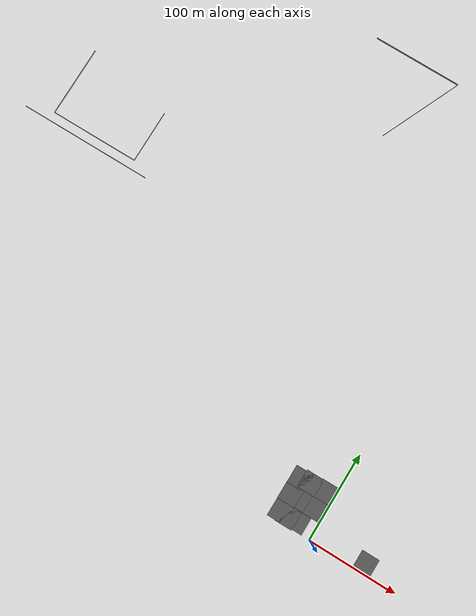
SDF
<sdf version="1.7">
 <world name="default">
  <model name="ground_plane">
   <static>1</static>
   <link name="link">
    <collision name="collision">
     <geometry><plane><normal>0 0 1</normal><size>100 100</size></plane></geometry>
     <surface><friction><ode><mu>100</mu><mu2>50</mu2></ode></friction></surface>
    </collision>
    <visual name="visual">
     <cast_shadows>0</cast_shadows>
     <geometry><plane><normal>0 0 1</normal><size>100 100</size></plane></geometry>
     <material>
      <script><uri>file://media/materials/scripts/gazebo.material</uri><name>Gazebo/Grey</name></script>
     </material>
    </visual>
   </link>
  </model>
  <model name="grey_wall_42">
   <static>1</static>
   <link name="link">
    <pose>-130 445 1.4 0 -0 1.15257</pose>
    <collision name="collision"><geometry><box><size>98.4886 0.2 2.8</size></box></geometry></collision>
    <visual name="visual">
     <cast_shadows>0</cast_shadows>
     <geometry><box><size>98.4886 0.2 2.8</size></box></geometry>
     <material>
      <script>
       <uri>model://grey_wall/materials/scripts</uri>
       <uri>model://grey_wall/materials/textures</uri>
       <name>vrc/grey_wall</name>
      </script>
     </material>
    </visual>
   </link>
  </model>
  <model name="grey_wall_43">
   <static>1</static>
   <link name="link">
    <pose>-160 490 1.4 0 -0 0</pose>
    <collision name="collision"><geometry><box><size>100 0.2 2.8</size></box></geometry></collision>
    <visual name="visual">
     <cast_shadows>0</cast_shadows>
     <geometry><box><size>100 0.2 2.8</size></box></geometry>
     <material>
      <script>
       <uri>model://grey_wall/materials/scripts</uri>
       <uri>model://grey_wall/materials/textures</uri>
       <name>vrc/grey_wall</name>
      </script>
     </material>
    </visual>
   </link>
  </model>
  <model name="grey_wall_44">
   <static>1</static>
   <link name="link">
    <pose>-415 230 1.4 0 -0 0</pose>
    <collision name="collision"><geometry><box><size>150 0.2 2.8</size></box></geometry></collision>
    <visual name="visual">
     <cast_shadows>0</cast_shadows>
     <geometry><box><size>150 0.2 2.8</size></box></geometry>
     <material>
      <script>
       <uri>model://grey_wall/materials/scripts</uri>
       <uri>model://grey_wall/materials/textures</uri>
       <name>vrc/grey_wall</name>
      </script>
     </material>
    </visual>
   </link>
  </model>
  <model name="grey_wall_45">
   <static>1</static>
   <link name="link">
    <pose>-360 270 1.4 0 -0 1.57</pose>
    <collision name="collision"><geometry><box><size>60 0.2 2.8</size></box></geometry></collision>
    <visual name="visual">
     <cast_shadows>0</cast_shadows>
     <geometry><box><size>60 0.2 2.8</size></box></geometry>
     <material>
      <script>
       <uri>model://grey_wall/materials/scripts</uri>
       <uri>model://grey_wall/materials/textures</uri>
       <name>vrc/grey_wall</name>
      </script>
     </material>
    </visual>
   </link>
  </model>
  <model name="grey_wall_46">
   <static>1</static>
   <link name="link">
    <pose>-410 240 1.4 0 -0 0</pose>
    <collision name="collision"><geometry><box><size>100 0.2 2.8</size></box></geometry></collision>
    <visual name="visual">
     <cast_shadows>0</cast_shadows>
     <geometry><box><size>100 0.2 2.8</size></box></geometry>
     <material>
      <script>
       <uri>model://grey_wall/materials/scripts</uri>
       <uri>model://grey_wall/materials/textures</uri>
       <name>vrc/grey_wall</name>
      </script>
     </material>
    </visual>
   </link>
  </model>
  <model name="grey_wall_47">
   <static>1</static>
   <link name="link">
    <pose>-460 280 1.4 0 -0 1.57</pose>
    <collision name="collision"><geometry><box><size>80 0.2 2.8</size></box></geometry></collision>
    <visual name="visual">
     <cast_shadows>0</cast_shadows>
     <geometry><box><size>80 0.2 2.8</size></box></geometry>
     <material>
      <script>
       <uri>model://grey_wall/materials/scripts</uri>
       <uri>model://grey_wall/materials/textures</uri>
       <name>vrc/grey_wall</name>
      </script>
     </material>
    </visual>
   </link>
  </model>
  <model name="asphalt_plane">
   <static>1</static>
   <link name="link">
    <collision name="collision"><geometry><box><size>20 20 0.1</size></box></geometry></collision>
    <visual name="visual">
     <cast_shadows>0</cast_shadows>
     <geometry><box><size>20 20 0.1</size></box></geometry>
     <material>
      <script>
       <uri>model://asphalt_plane/materials/scripts</uri>
       <uri>model://asphalt_plane/materials/textures</uri>
       <name>vrc/asphalt</name>
      </script>
     </material>
    </visual>
   </link>
   <pose>60.0976 9.97036 0 0 -0 0</pose>
  </model>
  <model name="asphalt_plane_12">
   <static>1</static>
   <link name="link">
    <collision name="collision"><geometry><box><size>20 20 0.1</size></box></geometry></collision>
    <visual name="visual">
     <cast_shadows>0</cast_shadows>
     <geometry><box><size>20 20 0.1</size></box></geometry>
     <material>
      <script>
       <uri>model://asphalt_plane/materials/scripts</uri>
       <uri>model://asphalt_plane/materials/textures</uri>
       <name>vrc/asphalt</name>
      </script>
     </material>
    </visual>
   </link>
   <pose>-19.5296 10.0986 0 0 -0 0</pose>
  </model>
  <model name="asphalt_plane_14">
   <static>1</static>
   <link name="link">
    <collision name="collision"><geometry><box><size>20 20 0.1</size></box></geometry></collision>
    <visual name="visual">
     <cast_shadows>0</cast_shadows>
     <geometry><box><size>20 20 0.1</size></box></geometry>
     <material>
      <script>
       <uri>model://asphalt_plane/materials/scripts</uri>
       <uri>model://asphalt_plane/materials/textures</uri>
       <name>vrc/asphalt</name>
      </script>
     </material>
    </visual>
   </link>
   <pose>-39.5592 9.35163 0 0 -0 0</pose>
  </model>
  <model name="asphalt_plane_15">
   <static>1</static>
   <link name="link">
    <collision name="collision"><geometry><box><size>20 20 0.1</size></box></geometry></collision>
    <visual name="visual">
     <cast_shadows>0</cast_shadows>
     <geometry><box><size>20 20 0.1</size></box></geometry>
     <material>
      <script>
       <uri>model://asphalt_plane/materials/scripts</uri>
       <uri>model://asphalt_plane/materials/textures</uri>
       <name>vrc/asphalt</name>
      </script>
     </material>
    </visual>
   </link>
   <pose>-39.7033 29.3666 0 0 -0 0</pose>
  </model>
  <model name="asphalt_plane_16">
   <static>1</static>
   <link name="link">
    <collision name="collision"><geometry><box><size>20 20 0.1</size></box></geometry></collision>
    <visual name="visual">
     <cast_shadows>0</cast_shadows>
     <geometry><box><size>20 20 0.1</size></box></geometry>
     <material>
      <script>
       <uri>model://asphalt_plane/materials/scripts</uri>
       <uri>model://asphalt_plane/materials/textures</uri>
       <name>vrc/asphalt</name>
      </script>
     </material>
    </visual>
   </link>
   <pose>-19.9946 29.5595 0 0 -0 0</pose>
  </model>
  <model name="asphalt_plane_19">
   <static>1</static>
   <link name="link">
    <collision name="collision"><geometry><box><size>20 20 0.1</size></box></geometry></collision>
    <visual name="visual">
     <cast_shadows>0</cast_shadows>
     <geometry><box><size>20 20 0.1</size></box></geometry>
     <material>
      <script>
       <uri>model://asphalt_plane/materials/scripts</uri>
       <uri>model://asphalt_plane/materials/textures</uri>
       <name>vrc/asphalt</name>
      </script>
     </material>
    </visual>
   </link>
   <pose>-10.1243 29.6975 0 0 -0 0</pose>
  </model>
  <model name="asphalt_plane_21">
   <static>1</static>
   <link name="link">
    <collision name="collision"><geometry><box><size>20 20 0.1</size></box></geometry></collision>
    <visual name="visual">
     <cast_shadows>0</cast_shadows>
     <geometry><box><size>20 20 0.1</size></box></geometry>
     <material>
      <script>
       <uri>model://asphalt_plane/materials/scripts</uri>
       <uri>model://asphalt_plane/materials/textures</uri>
       <name>vrc/asphalt</name>
      </script>
     </material>
    </visual>
   </link>
   <pose>-9.97302 49.7175 0 0 -0 0</pose>
  </model>
  <model name="asphalt_plane_22">
   <static>1</static>
   <link name="link">
    <collision name="collision"><geometry><box><size>20 20 0.1</size></box></geometry></collision>
    <visual name="visual">
     <cast_shadows>0</cast_shadows>
     <geometry><box><size>20 20 0.1</size></box></geometry>
     <material>
      <script>
       <uri>model://asphalt_plane/materials/scripts</uri>
       <uri>model://asphalt_plane/materials/textures</uri>
       <name>vrc/asphalt</name>
      </script>
     </material>
    </visual>
   </link>
   <pose>-28.3305 49.2699 0 0 -0 0</pose>
  </model>
  <model name="asphalt_plane_23">
   <static>1</static>
   <link name="link">
    <collision name="collision"><geometry><box><size>20 20 0.1</size></box></geometry></collision>
    <visual name="visual">
     <cast_shadows>0</cast_shadows>
     <geometry><box><size>20 20 0.1</size></box></geometry>
     <material>
      <script>
       <uri>model://asphalt_plane/materials/scripts</uri>
       <uri>model://asphalt_plane/materials/textures</uri>
       <name>vrc/asphalt</name>
      </script>
     </material>
    </visual>
   </link>
   <pose>-39.5575 47.7809 0 0 -0 0</pose>
  </model>
  <model name="asphalt_plane_25">
   <static>1</static>
   <link name="link">
    <collision name="collision"><geometry><box><size>20 20 0.1</size></box></geometry></collision>
    <visual name="visual">
     <cast_shadows>0</cast_shadows>
     <geometry><box><size>20 20 0.1</size></box></geometry>
     <material>
      <script>
       <uri>model://asphalt_plane/materials/scripts</uri>
       <uri>model://asphalt_plane/materials/textures</uri>
       <name>vrc/asphalt</name>
      </script>
     </material>
    </visual>
   </link>
   <pose>-30.6614 8.92603 0 0 -0 0</pose>
  </model>
 </world>
</sdf>
